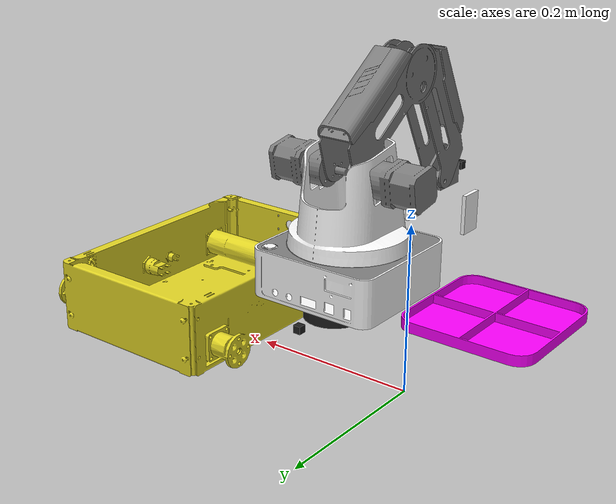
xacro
<?xml version="1.0"?>

<robot name="oryxbot" xmlns:xacro="http://www.ros.org/wiki/xacro">

  <xacro:include filename="$(find magician_description)/urdf/magician.urdf.xacro" />
  <xacro:include filename="$(find oryxbot_gazebo)/robots/oryxbot_base.urdf.xacro" />

  <xacro:include filename="$(find oryxbot_gazebo)/robots/camera.xacro" />
  <xacro:include filename="$(find oryxbot_gazebo)/robots/rplidar.xacro" />
  <!--xacro:include filename="$(find oryxbot_gazebo)/robots/paw.urdf.xacro" /-->
  <oryxbot_body/>

    <joint name="base_arm_joint" type="fixed">
        <origin xyz="0.08 0 0.07" rpy="0 0 0"/>
        <parent link="plate_2_link"/>
        <child link="magician_base"/>
        <axis xyz="1 0 0"/>
    </joint>

    <joint name="camera_joint" type="fixed">
        <origin xyz="0.15 0 0.0" rpy="0 0 0"/>
        <parent link="base_link"/>
        <child link="usb_cam_link"/>
        <axis xyz="1 0 0"/>
    </joint>

    <joint name="camera_joint1" type="fixed">
        <origin xyz="-0.07 0 0.005" rpy="1.5707 0 -1.5707"/>
        <parent link="magician_link4"/>
        <child link="hand_link"/>
        <axis xyz="1 0 0"/>
    </joint>

	<joint name="rplidar_joint" type="fixed">
		<origin xyz="0.1 0 0.04" rpy="0 0 0" />
		<parent link="base_link"/>
		<child link="laser_radar_link"/>
	</joint>

	<xacro:usb_camera prefix="hand"/>
	<xacro:usb_camera prefix="usb_cam"/>
	<xacro:rplidar prefix="laser"/>
</robot>

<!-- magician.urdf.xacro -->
<robot
  name="magician" xmlns:xacro="http://www.ros.org/wiki/xacro">

  <xacro:include filename="$(find magician_description)/urdf/magician.gazebo" />

  <xacro:include filename="$(find magician_description)/urdf/magician_transmission.xacro" />

  <xacro:property name="joint1_lower" value="-2.1816"/>
  <xacro:property name="joint1_upper" value="2.1816"/>
  <xacro:property name="joint2_lower" value="0.35"/>
  <xacro:property name="joint2_upper" value="1.57"/>
  <xacro:property name="joint3_lower" value="0.62"/>
  <xacro:property name="joint3_upper" value="1.57"/>

  <link
    name="magician_base">
    <inertial>
      <origin
        xyz="-0.00035432 -0.00080566 0.023187"
        rpy="0 0 0" />
      <mass
        value="0.23009" />
      <inertia
        ixx="0.00065784"
        ixy="-4.8312E-06"
        ixz="1.2493E-06"
        iyy="0.00069673"
        iyz="4.3823E-07"
        izz="0.0012945" />
    </inertial>
    <visual>
      <origin
        xyz="0 0 0"
        rpy="0 0 0" />
      <geometry>
        <mesh
          filename="package://magician_description/meshes/magician_base.STL" />
      </geometry>
      <material
        name="">
        <color
          rgba="1 1 1 1" />
      </material>
    </visual>
    <collision>
      <origin
        xyz="0 0 0"
        rpy="0 0 0" />
      <geometry>
        <mesh
          filename="package://magician_description/meshes/magician_base.STL" />
      </geometry>
    </collision>
  </link>
  <link
    name="magician_link1">
    <inertial>
      <origin
        xyz="0.00024809 -0.00074864 0.040762"
        rpy="0 0 0" />
      <mass
        value="0.081469" />
      <inertia
        ixx="0.00020859"
        ixy="8.163E-08"
        ixz="4.6298E-07"
        iyy="9.5838E-05"
        iyz="3.2246E-06"
        izz="0.00015246" />
    </inertial>
    <visual>
      <origin
        xyz="0 0 0"
        rpy="0 0 0" />
      <geometry>
        <mesh
          filename="package://magician_description/meshes/magician_link1.STL" />
      </geometry>
      <material
        name="">
        <color
          rgba="1 1 1 1" />
      </material>
    </visual>
    <collision>
      <origin
        xyz="0 0 0"
        rpy="0 0 0" />
      <geometry>
        <mesh
          filename="package://magician_description/meshes/magician_link1.STL" />
      </geometry>
    </collision>
  </link>
  <joint
    name="magician_joint1"
    type="revolute">
    <origin
      xyz="0 0 0.0569"
      rpy="0 0 0" />
    <parent
      link="magician_base" />
    <child
      link="magician_link1" />
    <axis
      xyz="0 0 1" />
    <limit
      lower="${joint1_lower}"
      upper="${joint1_upper}"
      effort="6"
      velocity="1.57" />
  </joint>
  <link
    name="magician_link2">
    <inertial>
      <origin
        xyz="-0.076276 0.029436 2.1815E-06"
        rpy="0 0 0" />
      <mass
        value="0.047726" />
      <inertia
        ixx="3.5818E-05"
        ixy="-4.4023E-06"
        ixz="-7.1903E-09"
        iyy="0.00014556"
        iyz="2.3353E-09"
        izz="0.00015167" />
    </inertial>
    <visual>
      <origin
        xyz="0 0 0"
        rpy="0 0 0" />
      <geometry>
        <mesh
          filename="package://magician_description/meshes/magician_link2.STL" />
      </geometry>
      <material
        name="">
        <color
          rgba="0.501960784313725 0.501960784313725 0.501960784313725 1" />
      </material>
    </visual>
    <collision>
      <origin
        xyz="0 0 0"
        rpy="0 0 0" />
      <geometry>
        <mesh
          filename="package://magician_description/meshes/magician_link2.STL" />
      </geometry>
    </collision>
  </link>
  <joint
    name="magician_joint2"
    type="revolute">
    <origin
      xyz="0 0 0.0821"
      rpy="0 1.5707963267948966 0" />
    <parent
      link="magician_link1" />
    <child
      link="magician_link2" />
    <axis
      xyz="0 0 1" />
    <limit
      lower="${joint2_lower}"
      upper="${joint2_upper}"
      effort="6"
      velocity="1.57" />
  </joint>
  <link
    name="magician_link3">
    <inertial>
      <origin
        xyz="0.029209 -0.054163 -8.4342E-05"
        rpy="0 0 0" />
      <mass
        value="0.042983" />
      <inertia
        ixx="0.00013733"
        ixy="-9.7605E-08"
        ixz="-1.1091E-07"
        iyy="2.3432E-05"
        iyz="3.5599E-07"
        izz="0.00014558" />
    </inertial>
    <visual>
      <origin
        xyz="0 0 0"
        rpy="0 0 0" />
      <geometry>
        <mesh
          filename="package://magician_description/meshes/magician_link3.STL" />
      </geometry>
      <material
        name="">
        <color
          rgba="0.501960784313725 0.501960784313725 0.501960784313725 1" />
      </material>
    </visual>
    <collision>
      <origin
        xyz="0 0 0"
        rpy="0 0 0" />
      <geometry>
        <mesh
          filename="package://magician_description/meshes/magician_link3.STL" />
      </geometry>
    </collision>
  </link>
  <joint
    name="magician_fake_joint1"
    type="revolute">
    <origin
      xyz="-0.135 0 0"
      rpy="-3.1415926535897932 0 -3.1415926535897932" />
    <parent
      link="magician_link2" />
    <child
      link="magician_fake_link" />
    <axis
      xyz="0 0 -1" />
    <limit
      lower="${-1*joint2_upper}"
      upper="${-1*joint2_lower}"
      effort="6"
      velocity="1.57" />
    <mimic
      joint="magician_joint2"
      multiplier="-1"
      offset="0"/>
  </joint>
  <link name="magician_fake_link">
    <inertial>
      <origin
        xyz="0 0 0"
        rpy="0 0 0" />
      <mass
        value="0.025" />
      <inertia
        ixx="2.5E-4"
        ixy="0"
        ixz="0"
        iyy="2.5E-4"
        iyz="0"
        izz="2.5E-4" />
    </inertial>
  </link>
  <joint
    name="magician_joint3"
    type="revolute">
    <origin
      xyz="0 0 0"
      rpy="0 0 0" />
    <parent
      link="magician_fake_link" />
    <child
      link="magician_link3" />
    <axis
      xyz="0 0 -1" />
    <limit
      lower="${joint3_lower}"
      upper="${joint3_upper}"
      effort="6"
      velocity="1.57" />
  </joint>
  <link
    name="magician_link4">
    <inertial>
      <origin
        xyz="-0.019694 0.0034659 0.0001155"
        rpy="0 0 0" />
      <mass
        value="0.020564" />
      <inertia
        ixx="3.7203E-06"
        ixy="7.6009E-07"
        ixz="3.146E-08"
        iyy="4.5639E-06"
        iyz="-5.7432E-08"
        izz="6.427E-06" />
    </inertial>
    <visual>
      <origin
        xyz="0 0 0"
        rpy="0 0 0" />
      <geometry>
        <mesh
          filename="package://magician_description/meshes/magician_link4.STL" />
      </geometry>
      <material
        name="">
        <color
          rgba="0.501960784313725 0.501960784313725 0.501960784313725 1" />
      </material>
    </visual>
    <collision>
      <origin
        xyz="0 0 0"
        rpy="0 0 0" />
      <geometry>
        <mesh
          filename="package://magician_description/meshes/magician_link4.STL" />
      </geometry>
    </collision>
  </link>
  <joint
    name="magician_fake_joint2"
    type="revolute">
    <origin
      xyz="0 -0.147 0"
      rpy="3.1415926535897932 0 1.5707963267948966" />
    <parent
      link="magician_link3" />
    <child
      link="magician_link4" />
    <axis
      xyz="0 0 1" />
    <limit
      lower="${-1*joint3_upper}"
      upper="${-1*joint3_lower}"
      effort="60"
      velocity="1.57" />
    <mimic
      joint="magician_joint3"
      multiplier="-1"
      offset="0"/>
  </joint>
  <link name="magician_arm_end"/>
  <joint
    name="magician_link4_joint1"
    type="fixed">
    <origin
      xyz="0 0 0"
      rpy="-1.5707963267948966 3.1415926535897932 0" />
    <parent
      link="magician_link4" />
    <child
      link="magician_arm_end" />
  </joint>
  <link
    name="magician_link3_surface">
    <inertial>
      <origin
        xyz="0.059385 -0.050176 -2.6308E-06"
        rpy="0 0 0" />
      <mass
        value="0.015005" />
      <inertia
        ixx="1.8842E-05"
        ixy="-3.9211E-07"
        ixz="4.9615E-10"
        iyy="3.6097E-06"
        iyz="-1.2797E-09"
        izz="1.6901E-05" />
    </inertial>
    <visual>
      <origin
        xyz="0 0 0"
        rpy="0 0 0" />
      <geometry>
        <mesh
          filename="package://magician_description/meshes/magician_link3_surface.STL" />
      </geometry>
      <material
        name="">
        <color
          rgba="0.501960784313725 0.501960784313725 0.501960784313725 1" />
      </material>
    </visual>
    <collision>
      <origin
        xyz="0 0 0"
        rpy="0 0 0" />
      <geometry>
        <mesh
          filename="package://magician_description/meshes/magician_link3_surface.STL" />
      </geometry>
    </collision>
  </link>
  <joint
    name="magician_link3_joint1"
    type="fixed">
    <origin
      xyz="0 0 0"
      rpy="0 0 0" />
    <parent
      link="magician_link3" />
    <child
      link="magician_link3_surface" />
    <axis
      xyz="0 0 0" />
  </joint>
  <link
    name="magician_link2_surface">
    <inertial>
      <origin
        xyz="-0.066726 0.060698 5.5359E-07"
        rpy="0 0 0" />
      <mass
        value="0.018846" />
      <inertia
        ixx="5.9574E-06"
        ixy="-5.1053E-08"
        ixz="3.3782E-09"
        iyy="2.8034E-05"
        iyz="-1.6336E-11"
        izz="2.3816E-05" />
    </inertial>
    <visual>
      <origin
        xyz="0 0 0"
        rpy="0 0 0" />
      <geometry>
        <mesh
          filename="package://magician_description/meshes/magician_link2_surface.STL" />
      </geometry>
      <material
        name="">
        <color
          rgba="0.501960784313725 0.501960784313725 0.501960784313725 1" />
      </material>
    </visual>
    <collision>
      <origin
        xyz="0 0 0"
        rpy="0 0 0" />
      <geometry>
        <mesh
          filename="package://magician_description/meshes/magician_link2_surface.STL" />
      </geometry>
    </collision>
  </link>
  <joint
    name="magician_link2_joint1"
    type="fixed">
    <origin
      xyz="0 0 0"
      rpy="0 0 0" />
    <parent
      link="magician_link2" />
    <child
      link="magician_link2_surface" />
    <axis
      xyz="0 0 0" />
  </joint>
  <link
    name="magician_servos">
    <inertial>
      <origin
        xyz="-3.3282E-06 0 0.0821"
        rpy="0 0 0" />
      <mass
        value="0.21777" />
      <inertia
        ixx="5.4372E-05"
        ixy="-1.467E-18"
        ixz="-1.6192E-19"
        iyy="0.00011754"
        iyz="7.4188E-21"
        izz="0.00011754" />
    </inertial>
    <visual>
      <origin
        xyz="0 0 0"
        rpy="0 0 0" />
      <geometry>
        <mesh
          filename="package://magician_description/meshes/magician_servos.STL" />
      </geometry>
      <material
        name="">
        <color
          rgba="0.501960784313725 0.501960784313725 0.501960784313725 1" />
      </material>
    </visual>
    <collision>
      <origin
        xyz="0 0 0"
        rpy="0 0 0" />
      <geometry>
        <mesh
          filename="package://magician_description/meshes/magician_servos.STL" />
      </geometry>
    </collision>
  </link>
  <joint
    name="magician_link1_joint1"
    type="fixed">
    <origin
      xyz="0 0 0"
      rpy="0 0 0" />
    <parent
      link="magician_link1" />
    <child
      link="magician_servos" />
    <axis
      xyz="0 0 0" />
  </joint>
  <link
    name="magician_base_surface">
    <inertial>
      <origin
        xyz="0 0 0"
        rpy="0 0 0" />
      <mass
        value="0" />
      <inertia
        ixx="0"
        ixy="0"
        ixz="0"
        iyy="0"
        iyz="0"
        izz="0" />
    </inertial>
    <visual>
      <origin
        xyz="0 0 0"
        rpy="0 0 0" />
      <geometry>
        <mesh
          filename="package://magician_description/meshes/magician_base_surface.STL" />
      </geometry>
      <material
        name="">
        <color
          rgba="0.501960784313725 0.501960784313725 0.501960784313725 1" />
      </material>
    </visual>
    <collision>
      <origin
        xyz="0 0 0"
        rpy="0 0 0" />
      <geometry>
        <mesh
          filename="package://magician_description/meshes/magician_base_surface.STL" />
      </geometry>
    </collision>
  </link>
  <joint
    name="magician_base_joint1"
    type="fixed">
    <origin
      xyz="0 0 0"
      rpy="0 0 0" />
    <parent
      link="magician_base" />
    <child
      link="magician_base_surface" />
    <axis
      xyz="0 0 0" />
  </joint>
  <link name="magician_end_turnplate"/>
  <joint
    name="magician_fake_joint3"
    type="revolute">
    <origin
      xyz="0 0 0"
      rpy="0 0 0" />
    <parent
      link="magician_arm_end" />
    <child
      link="magician_end_turnplate" />
    <axis
      xyz="0 0 1" />
    <limit
      lower="${-1*joint1_upper}"
      upper="${-1*joint1_lower}"
      effort="6"
      velocity="1.57" />
    <mimic
      joint="magician_joint1"
      multiplier="-1"
      offset="0"/>
  </joint>
  <link name="magician_end_link"/>
  <joint
    name="magician_end_turnplate_joint1"
    type="fixed">
    <origin
      xyz="0 0 0"
      rpy="0 0 0" />
    <parent
      link="magician_end_turnplate" />
    <child
      link="magician_end_link" />
    <axis
      xyz="0 0 0" />
  </joint>
  <link name="magician_end_effctor"/>
  <joint
    name="magician_end_link_joint1"
    type="fixed">
    <origin
      xyz="0 0 0"
      rpy="0 0 0" />
    <parent
      link="magician_end_link" />
    <child
      link="magician_end_effctor" />
    <axis
      xyz="0 0 0" />
  </joint>

  <!--paw-->

  <xacro:include filename="$(find oryxbot_gazebo)/robots/paw.urdf.xacro" />

    <joint name="finger_joint1" type="prismatic">
        <parent link="magician_link4"/>
        <child link="gripper_finger_link1"/>
        <origin xyz="0.0 0 0" rpy="-1.5707 0 -1.5707"/>
        <axis xyz="0 1 0" />
        <limit effort="1000" lower="0" upper="0.04" velocity="50.0"/>
        <dynamics damping="0" friction="0"/>
    </joint>

    <joint name="finger_joint2" type="prismatic">
        <parent link="magician_link4"/>
        <child link="gripper_finger_link2"/>
        <origin xyz="0.0 0 0" rpy="-1.5707 0 -1.5707"/>
        <axis xyz="0 1 0" />
        <limit effort="1000" lower="-0.04" upper="0" velocity="50.0"/>
        <dynamics damping="0" friction="0"/>
    </joint>

    <joint name="grasping_frame_joint" type="fixed">
      <parent link="magician_link4"/>
      <child link="grasping_frame"/>
      <origin xyz="0 -0.06 0" rpy="-1.5707 0 -1.5707"/>
    </joint>

	<gazebo>
		<plugin name="gazebo_grasp_fix" filename="libgazebo_grasp_fix.so">
            <arm>
                <arm_name>magician_arm</arm_name>
                <palm_link>magician_link4</palm_link>
                <gripper_link>gripper_finger_link1</gripper_link>
                <gripper_link>gripper_finger_link2</gripper_link>
            </arm>
			<forces_angle_tolerance>100</forces_angle_tolerance>
			<update_rate>4</update_rate>
			<grip_count_threshold>4</grip_count_threshold>
			<max_grip_count>8</max_grip_count>
			<release_tolerance>0.005</release_tolerance>
			<disable_collisions_on_attach>false</disable_collisions_on_attach>
			<contact_topic>__default_topic__</contact_topic>
		</plugin>
	</gazebo>

</robot>

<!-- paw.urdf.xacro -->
<robot name="paw" xmlns:xacro="http://www.ros.org/wiki/xacro">

    <!-- Left gripper -->
    <xacro:property name="left_gripper_len" value="0.05" />
    <xacro:property name="left_gripper_width" value="0.005" />
    <xacro:property name="left_gripper_height" value="0.03" />

    <!-- Right gripper -->
    <xacro:property name="right_gripper_len" value="0.05" />
    <xacro:property name="right_gripper_width" value="0.005" />
    <xacro:property name="right_gripper_height" value="0.03" />
    <!-- Inertial matrix -->
    <xacro:macro name="inertial_matrix" params="mass">
        <inertial>
            <mass value="${mass}" />
            <inertia ixx="1.0" ixy="0.0" ixz="0.0" iyy="0.5" iyz="0.0" izz="1.0" />
        </inertial>
    </xacro:macro>
    <!-- //////////////////////////////////////   gripper   ////////////////////////////////////////////// -->
    <!-- LEFT GRIPPER AFT LINK -->
    <!-- LEFT GRIPPER AFT LINK -->
    <link name="gripper_finger_link1">
        <visual>
            <origin xyz="0.04 -0.04 -0.02"/>
            <geometry>
                <box size="${left_gripper_len} ${left_gripper_width} ${left_gripper_height}" />
            </geometry>
            <material name="White" />
        </visual>
        <collision>
            <origin xyz="0.04 -0.04 -0.02"/>
            <geometry>
                <box size="${left_gripper_len} ${left_gripper_width} ${left_gripper_height}" />
            </geometry>
        </collision>
        <xacro:inertial_matrix mass="0.02"/>
    </link>

    <!-- RIGHT GRIPPER AFT LINK -->
    <link name="gripper_finger_link2">
        <visual>
            <origin xyz="0.04 0.04 -0.02"/>
            <geometry>
                <box size="${right_gripper_len} ${right_gripper_width} ${right_gripper_height}" />
            </geometry>
            <material name="White" />
        </visual>
        <collision>
            <origin xyz="0.04 0.04 -0.02"/>
            <geometry>
                <box size="${right_gripper_len} ${right_gripper_width} ${right_gripper_height}" />
            </geometry>
        </collision>
        <xacro:inertial_matrix mass="0.02"/>
    </link>

    <!-- Grasping frame -->
    <link name="grasping_frame"/>

    <gazebo reference="gripper_finger_link1">
        <material>Gazebo/White</material>
    </gazebo>
    <gazebo reference="gripper_finger_link2">
        <material>Gazebo/White</material>
    </gazebo>

</robot>

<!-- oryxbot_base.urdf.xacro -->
<robot name="oryxbot" xmlns:xacro="http://www.ros.org/wiki/xacro">

    <!-- Defining the colors used in this robot -->
    <material name="Black">
        <color rgba="0 0 0 1"/>
    </material>

    <material name="White">
        <color rgba="1 1 1 1"/>
    </material>

    <material name="Blue">
        <color rgba="0 0 1 1"/>
    </material>

    <material name="Red">
        <color rgba="1 0 0 1"/>
    </material>

    <!-- PROPERTY LIST -->
    <!--All units in m-kg-s-radians unit system -->
    <xacro:property name="M_PI" value="3.1415926535897931" />

    <!-- Main body length, width, height and mass -->
    <xacro:property name="base_mass"        value="1" />
    <xacro:property name="base_link_radius" value="0.13"/>
    <xacro:property name="base_link_length" value="0.005"/>

    <xacro:property name="motor_x" value="-0.05"/>

    <!-- Caster radius and mass -->
    <xacro:property name="caster_radius"          value="0.016" />
    <xacro:property name="caster_mass"            value="0.01" />
    <xacro:property name="caster_joint_origin_x"  value="-0.12" />

    <!-- Wheel radius, height and mass -->
    <xacro:property name="wheel_radius" value="0.033" />
    <xacro:property name="wheel_height" value="0.017" />
    <xacro:property name="wheel_mass"   value="0.1" />

    <!-- plate height and mass -->
    <xacro:property name="plate_mass"   value="0.05"/>
    <xacro:property name="plate_height" value="0.07"/>
    <xacro:property name="standoff_x"   value="0.12"/>
    <xacro:property name="standoff_y"   value="0.10"/>

    <!-- BASE-FOOTPRINT -->
    <!-- base_footprint is a fictitious link(frame) that is on the ground right below base_link origin -->
    <xacro:macro name="oryxbot_body">
        <link name="base_footprint">
            <visual>
                <origin xyz="0 0 0" rpy="0 0 0" />
                <geometry>
                    <box size="0.001 0.001 0.001" />
                </geometry>
            </visual>
        </link>

        <joint name="base_footprint_joint" type="fixed">
            <origin xyz="0 0 ${wheel_radius}" rpy="0 0 0" />
            <parent link="base_footprint"/>
            <child link="base_link" />
        </joint>

        <!-- BASE-LINK -->
        <!--Actual body/chassis of the robot-->
        <link name="base_link">
            <inertial>
                <mass value="30" />
                <inertia ixx="4.2" ixy = "0" ixz = "0"
                    iyy="5.42" iyz = "0"
                    izz="2.1" />
            </inertial>
            <visual>
                <origin xyz="0.334 -0.05 0" rpy="0 0 -1.570796"/>
                <geometry>
                    <mesh filename="package://oryxbot_description/meshes/base_link.STL"/>
                </geometry>
                <material name="yellow" />
            </visual>

            <collision>
                <origin xyz="0 0 0" rpy="0 0 0" />
                <geometry>
                    <box size="0.3 0.2 0.07"/>
                </geometry>
            </collision>
        </link>

  <joint name="box_joint" type="fixed">
    <origin xyz="0 0 0"
            rpy="0 0 0" />
    <parent link="base_link" />
    <child link="box_link" />
    <axis xyz="0 0 0" />
  </joint>

  <link name="box_link">
    <inertial>
      <origin
        xyz="6.93889390390723E-18 5.55111512312578E-17 -0.00333728887819676"
        rpy="0 0 0" />
      <mass value="0.0613008845396002" />
      <inertia
        ixx="0.000126102196183885"
        ixy="-2.3172366261422E-20"
        ixz="-9.70144260828533E-21"
        iyy="0.000126102196183885"
        iyz="8.61513588913842E-20"
        izz="0.000251007561260011" />
    </inertial>
    <visual>
        <origin xyz="-0.105 0.0 0.09" rpy="0 0 -1.570796"/>
      <geometry>
        <mesh filename="package://oryxbot_description/meshes/box_link.STL" />
      </geometry>
      <material name="">
        <color rgba="1 0 1 1" />
      </material>
    </visual>
    <collision>
        <origin xyz="-0.105 0.0 0.08" rpy="0 0 -1.570796"/>
      <geometry>
        <mesh filename="package://oryxbot_description/meshes/box_link.STL" />
      </geometry>
    </collision>
  </link>

        <gazebo reference="base_link">
            <material>Gazebo/White</material>
        </gazebo>

        <!-- BASE-LINK -->
        <!--Actual body/chassis of the robot-->
        <link name="sliding_plate">
            <inertial>
                <mass value="10" />
                <inertia ixx="0.42" ixy = "0" ixz = "0"
                    iyy="0.542" iyz = "0"
                    izz="0.21" />
            </inertial>
            <collision>
                <origin xyz="0 0 0" rpy="0 0 0" />
                <geometry>
                    <box size="0.3 0.2 0.02"/>
                </geometry>
            </collision>
        </link>

        <gazebo reference="sliding_plate">
            <material>Gazebo/Blue</material>
            <mu1>1</mu1>
            <mu2>1</mu2>
        </gazebo>
        <joint name="sliding_plate_joint" type="fixed">
            <origin xyz="0 0 -0.06" rpy="0 0 0" />
            <parent link="base_link"/>
            <child link="sliding_plate" />
        </joint>

        <link name="plate_2_link">
            <cylinder_inertial_matrix  m="0.1" r="0.01" h="0.01" />

            <collision>
                <origin xyz="0.0 0.0 0.0" rpy="0 0 0" />
                <geometry>
                    <cylinder length="0.01" radius="0.01"/>
                </geometry>
            </collision>
        </link>
        <gazebo reference="plate_2_link">
            <material>Gazebo/Blue</material>
        </gazebo>
        <joint name="plate_2_joint" type="fixed">
            <origin xyz="0 0 0" rpy="0 0 0" />
            <parent link="base_link"/>
            <child link="plate_2_link" />
        </joint>

        <gazebo>
            <plugin name="gazebo_ros_model_velocity" filename="libgazebo_ros_model_velocity.so">
            <commandTopic>cmd_vel</commandTopic>
            <outputVelocityTopic>output_vel</outputVelocityTopic>
            <updateRate>50.0</updateRate>
            <commandTimeout>0.5</commandTimeout>
            <odometryTopic>odom</odometryTopic>
            <odometryFrame>odom</odometryFrame>
            <odometryRate>20.0</odometryRate>
            <publishOdometryTf>true</publishOdometryTf>
            <robotBaseFrame>base_footprint</robotBaseFrame>
            <gaussianNoiseXY>0.02</gaussianNoiseXY>
            <gaussianNoiseYaw>0.02</gaussianNoiseYaw>
            <linearVelocityLimit>1.0</linearVelocityLimit>
            <angularVelocityLimit>3.0</angularVelocityLimit>
            <linearAccelerationLimit>1.0</linearAccelerationLimit>
            <angularAccelerationLimit>3.0</angularAccelerationLimit>
            <linearJerkLimit>5.0</linearJerkLimit>
            <angularJerkLimit>50.0</angularJerkLimit>
            </plugin>
        </gazebo>

    </xacro:macro>
</robot>

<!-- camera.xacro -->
<robot xmlns:xacro="http://www.ros.org/wiki/xacro" name="camera">

    <xacro:macro name="usb_camera" params="prefix:=usb_cam">
        <!-- Create laser reference frame -->
        <link name="${prefix}_link">
            <inertial>
                <mass value="0.1" />
                <origin xyz="0 0 0" />
                <inertia ixx="0.01" ixy="0.0" ixz="0.0"
                         iyy="0.01" iyz="0.0"
                         izz="0.01" />
            </inertial>

            <visual>
                <origin xyz=" 0 0 0 " rpy="0 0 0" />
                <geometry>
                    <box size="0.01 0.01 0.01" />
                </geometry>
                <material name="black"/>
            </visual>

            <collision>
                <origin xyz="0.0 0.0 0.0" rpy="0 0 0" />
                <geometry>
                    <box size="0.01 0.01 0.01" />
                </geometry>
            </collision>
        </link>
        <gazebo reference="${prefix}_link">
            <material>Gazebo/Black</material>
        </gazebo>

        <gazebo reference="${prefix}_link">
            <sensor type="camera" name="camera_node">
                <update_rate>30.0</update_rate>
                <camera name="head">
                    <horizontal_fov>1.3962634</horizontal_fov>
                    <image>
                        <width>640</width>
                        <height>480</height>
                        <format>R8G8B8</format>
                    </image>
                    <clip>
                        <near>0.02</near>
                        <far>300</far>
                    </clip>
                    <noise>
                        <type>gaussian</type>
                        <mean>0.0</mean>
                        <stddev>0.007</stddev>
                    </noise>
                </camera>
                <plugin name="gazebo_camera" filename="libgazebo_ros_camera.so">
                    <alwaysOn>true</alwaysOn>
                    <updateRate>30.0</updateRate>
                    <cameraName>${prefix}</cameraName>
                    <imageTopicName>${prefix}/image_raw</imageTopicName>
                    <cameraInfoTopicName>${prefix}_info</cameraInfoTopicName>
                    <frameName>${prefix}_link</frameName>
                    <hackBaseline>0.07</hackBaseline>
                    <distortionK1>0.0</distortionK1>
                    <distortionK2>0.0</distortionK2>
                    <distortionK3>0.0</distortionK3>
                    <distortionT1>0.0</distortionT1>
                    <distortionT2>0.0</distortionT2>
                </plugin>
            </sensor>
        </gazebo>

    </xacro:macro>
</robot>

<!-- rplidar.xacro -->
<robot xmlns:xacro="http://www.ros.org/wiki/xacro" name="laser">

    <xacro:macro name="rplidar" params="prefix:=laser">
        <!-- Create laser reference frame -->
        <link name="laser_radar_link">
            <inertial>
                <mass value="0.1" />
                <origin xyz="0 0 0" />
                <inertia ixx="0.01" ixy="0.0" ixz="0.0"
                         iyy="0.01" iyz="0.0"
                         izz="0.01" />
            </inertial>

            <visual>
                <origin xyz=" 0 0 0 " rpy="0 0 0" />
                <geometry>
                    <cylinder length="0.0155" radius="0.0355"/>
                </geometry>
                <material name="black"/>
            </visual>

            <collision>
                <origin xyz="0.0 0.0 0.0" rpy="0 0 0" />
                <geometry>
                    <cylinder length="0.02" radius="0.035"/>
                </geometry>
            </collision>
        </link>
        <gazebo reference="laser_radar_link">
            <material>Gazebo/Red</material>
        </gazebo>

        <gazebo reference="laser_radar_link">
            <sensor type="ray" name="rplidar">
                <pose>0 0 0 0 0 0</pose>
                <visualize>false</visualize>
                <update_rate>5.5</update_rate>
                <ray>
                    <scan>
                      <horizontal>
                        <samples>360</samples>
                        <resolution>1</resolution>
                        <min_angle>-1.5707</min_angle>
                        <max_angle>1.5707</max_angle>
                      </horizontal>
                    </scan>
                    <range>
                      <min>0.10</min>
                      <max>6.0</max>
                      <resolution>0.01</resolution>
                    </range>
                    <noise>
                      <type>gaussian</type>
                      <mean>0.0</mean>
                      <stddev>0.01</stddev>
                    </noise>
                </ray>
                <plugin name="gazebo_rplidar" filename="libgazebo_ros_laser.so">
                    <topicName>/scan</topicName>
                    <frameName>laser_radar_link</frameName>
                </plugin>
            </sensor>
        </gazebo>

    </xacro:macro>
</robot>
